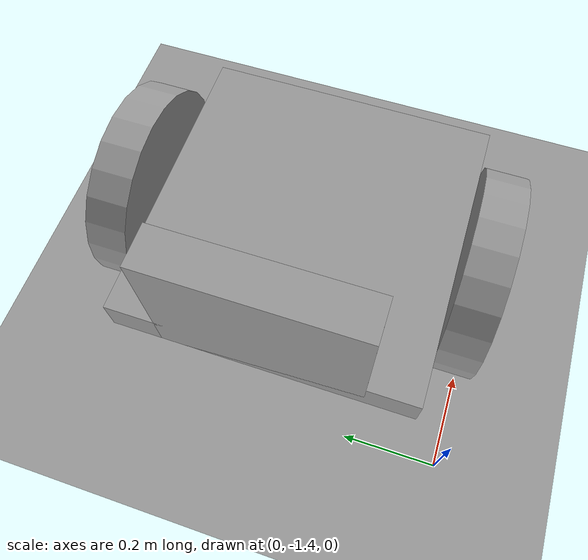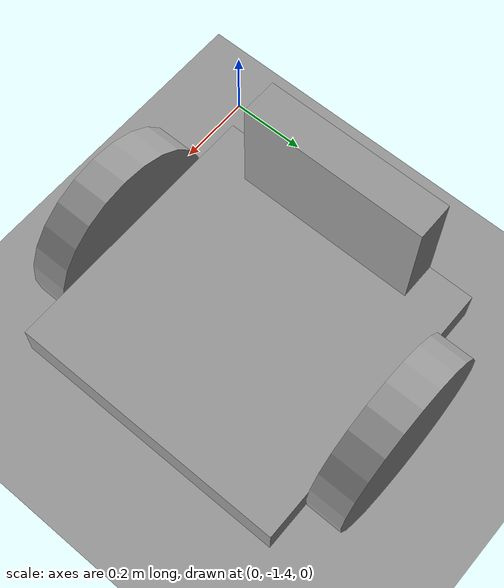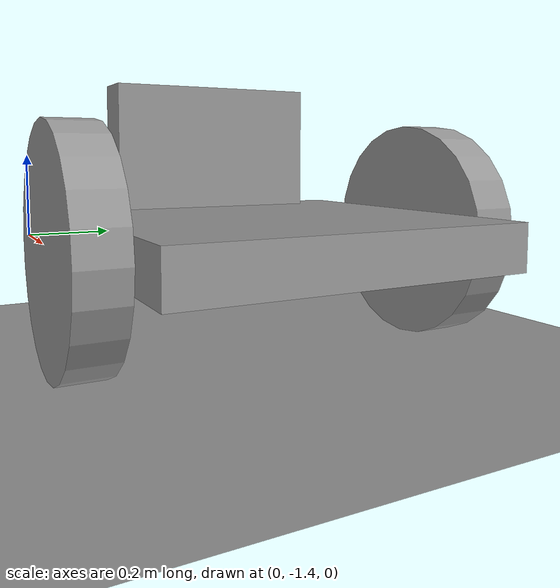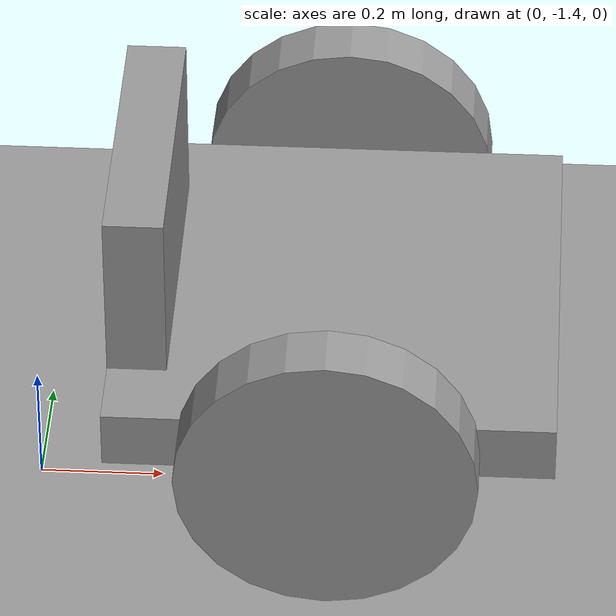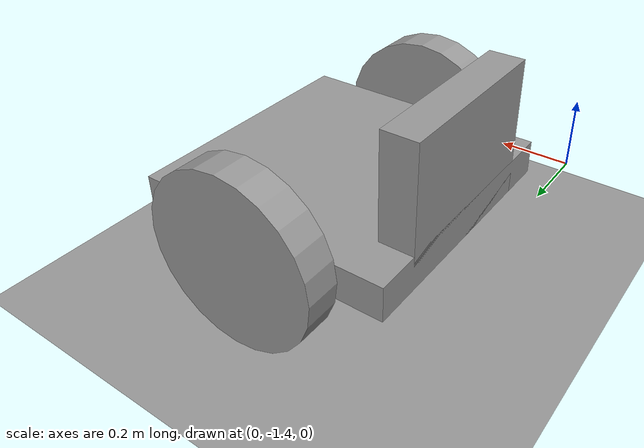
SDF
<?xml version='1.0'?>
<sdf version='1.6'>
  <model name='wheelchair'>
    <link name='link_1'>
      <inertial>
        <mass>1</mass>
        <inertia>
          <ixx>0.166667</ixx>
          <ixy>0</ixy>
          <ixz>0</ixz>
          <iyy>0.166667</iyy>
          <iyz>0</iyz>
          <izz>0.166667</izz>
        </inertia>
        <pose frame=''>0 0 0 0 -0 0</pose>
      </inertial>
      <pose frame=''>0.467386 -0.968428 0.02 0 -0 0</pose>
      <gravity>1</gravity>
      <self_collide>0</self_collide>
      <kinematic>0</kinematic>
      <enable_wind>0</enable_wind>
      <visual name='visual'>
        <pose frame=''>0 0 0 0 -0 0</pose>
        <geometry>
          <box>
            <size>0.75 0.75 0.1</size>
          </box>
        </geometry>
        <material>
          <lighting>1</lighting>
          <script>
            <uri>file://media/materials/scripts/gazebo.material</uri>
            <name>Gazebo/Grey</name>
          </script>
          <shader type='pixel'>
            <normal_map>__default__</normal_map>
          </shader>
          <ambient>0.3 0.3 0.3 1</ambient>
          <diffuse>0.7 0.7 0.7 1</diffuse>
          <specular>0.01 0.01 0.01 1</specular>
          <emissive>0 0 0 1</emissive>
        </material>
        <transparency>0</transparency>
        <cast_shadows>1</cast_shadows>
      </visual>
      <collision name='collision'>
        <laser_retro>0</laser_retro>
        <max_contacts>10</max_contacts>
        <pose frame=''>0 0 0 0 -0 0</pose>
        <geometry>
          <box>
            <size>0.75 0.75 0.1</size>
          </box>
        </geometry>
        <surface>
          <friction>
            <ode>
              <mu>1</mu>
              <mu2>1</mu2>
              <fdir1>0 0 0</fdir1>
              <slip1>0</slip1>
              <slip2>0</slip2>
            </ode>
            <torsional>
              <coefficient>1</coefficient>
              <patch_radius>0</patch_radius>
              <surface_radius>0</surface_radius>
              <use_patch_radius>1</use_patch_radius>
              <ode>
                <slip>0</slip>
              </ode>
            </torsional>
          </friction>
          <bounce>
            <restitution_coefficient>0</restitution_coefficient>
            <threshold>1e+06</threshold>
          </bounce>
          <contact>
            <collide_without_contact>0</collide_without_contact>
            <collide_without_contact_bitmask>1</collide_without_contact_bitmask>
            <collide_bitmask>1</collide_bitmask>
            <ode>
              <soft_cfm>0</soft_cfm>
              <soft_erp>0.2</soft_erp>
              <kp>1e+13</kp>
              <kd>1</kd>
              <max_vel>0.01</max_vel>
              <min_depth>0</min_depth>
            </ode>
            <bullet>
              <split_impulse>1</split_impulse>
              <split_impulse_penetration_threshold>-0.01</split_impulse_penetration_threshold>
              <soft_cfm>0</soft_cfm>
              <soft_erp>0.2</soft_erp>
              <kp>1e+13</kp>
              <kd>1</kd>
            </bullet>
          </contact>
        </surface>
      </collision>
    </link>
    <link name='link_2'>
      <inertial>
        <mass>1</mass>
        <inertia>
          <ixx>0.145833</ixx>
          <ixy>0</ixy>
          <ixz>0</ixz>
          <iyy>0.145833</iyy>
          <iyz>0</iyz>
          <izz>0.125</izz>
        </inertia>
        <pose frame=''>0 0 0 0 -0 0</pose>
      </inertial>
      <pose frame=''>0.467386 -0.543428 0.02 0 -0 0</pose>
      <gravity>1</gravity>
      <self_collide>0</self_collide>
      <kinematic>0</kinematic>
      <enable_wind>0</enable_wind>
      <visual name='visual'>
        <pose frame=''>0 0 0 1.5708 -0 0</pose>
        <geometry>
          <cylinder>
            <radius>0.25</radius>
            <length>0.1</length>
          </cylinder>
        </geometry>
        <material>
          <lighting>1</lighting>
          <script>
            <uri>file://media/materials/scripts/gazebo.material</uri>
            <name>Gazebo/Grey</name>
          </script>
          <shader type='pixel'>
            <normal_map>__default__</normal_map>
          </shader>
          <ambient>0.3 0.3 0.3 1</ambient>
          <diffuse>0.7 0.7 0.7 1</diffuse>
          <specular>0.01 0.01 0.01 1</specular>
          <emissive>0 0 0 1</emissive>
        </material>
        <transparency>0</transparency>
        <cast_shadows>1</cast_shadows>
      </visual>
      <collision name='collision'>
        <laser_retro>0</laser_retro>
        <max_contacts>10</max_contacts>
        <pose frame=''>0 0 0 1.5708 -0 0</pose>
        <geometry>
          <cylinder>
            <radius>0.25</radius>
            <length>0.1</length>
          </cylinder>
        </geometry>
        <surface>
          <friction>
            <ode>
              <mu>1</mu>
              <mu2>1</mu2>
              <fdir1>0 0 0</fdir1>
              <slip1>0</slip1>
              <slip2>0</slip2>
            </ode>
            <torsional>
              <coefficient>1</coefficient>
              <patch_radius>0</patch_radius>
              <surface_radius>0</surface_radius>
              <use_patch_radius>1</use_patch_radius>
              <ode>
                <slip>0</slip>
              </ode>
            </torsional>
          </friction>
          <bounce>
            <restitution_coefficient>0</restitution_coefficient>
            <threshold>1e+06</threshold>
          </bounce>
          <contact>
            <collide_without_contact>0</collide_without_contact>
            <collide_without_contact_bitmask>1</collide_without_contact_bitmask>
            <collide_bitmask>1</collide_bitmask>
            <ode>
              <soft_cfm>0</soft_cfm>
              <soft_erp>0.2</soft_erp>
              <kp>1e+13</kp>
              <kd>1</kd>
              <max_vel>0.01</max_vel>
              <min_depth>0</min_depth>
            </ode>
            <bullet>
              <split_impulse>1</split_impulse>
              <split_impulse_penetration_threshold>-0.01</split_impulse_penetration_threshold>
              <soft_cfm>0</soft_cfm>
              <soft_erp>0.2</soft_erp>
              <kp>1e+13</kp>
              <kd>1</kd>
            </bullet>
          </contact>
        </surface>
      </collision>
    </link>
    <link name='link_2_clone'>
      <inertial>
        <mass>1</mass>
        <inertia>
          <ixx>0.145833</ixx>
          <ixy>0</ixy>
          <ixz>0</ixz>
          <iyy>0.145833</iyy>
          <iyz>0</iyz>
          <izz>0.125</izz>
        </inertia>
        <pose frame=''>0 0 0 0 -0 0</pose>
      </inertial>
      <pose frame=''>0.467386 -1.39343 0.02 0 -0 0</pose>
      <gravity>1</gravity>
      <self_collide>0</self_collide>
      <kinematic>0</kinematic>
      <enable_wind>0</enable_wind>
      <visual name='visual'>
        <pose frame=''>0 0 0 1.5708 -0 0</pose>
        <geometry>
          <cylinder>
            <radius>0.25</radius>
            <length>0.1</length>
          </cylinder>
        </geometry>
        <material>
          <lighting>1</lighting>
          <script>
            <uri>file://media/materials/scripts/gazebo.material</uri>
            <name>Gazebo/Grey</name>
          </script>
          <shader type='pixel'>
            <normal_map>__default__</normal_map>
          </shader>
          <ambient>0.3 0.3 0.3 1</ambient>
          <diffuse>0.7 0.7 0.7 1</diffuse>
          <specular>0.01 0.01 0.01 1</specular>
          <emissive>0 0 0 1</emissive>
        </material>
        <transparency>0</transparency>
        <cast_shadows>1</cast_shadows>
      </visual>
      <collision name='collision'>
        <laser_retro>0</laser_retro>
        <max_contacts>10</max_contacts>
        <pose frame=''>0 0 0 1.5708 -0 0</pose>
        <geometry>
          <cylinder>
            <radius>0.25</radius>
            <length>0.1</length>
          </cylinder>
        </geometry>
        <surface>
          <friction>
            <ode>
              <mu>1</mu>
              <mu2>1</mu2>
              <fdir1>0 0 0</fdir1>
              <slip1>0</slip1>
              <slip2>0</slip2>
            </ode>
            <torsional>
              <coefficient>1</coefficient>
              <patch_radius>0</patch_radius>
              <surface_radius>0</surface_radius>
              <use_patch_radius>1</use_patch_radius>
              <ode>
                <slip>0</slip>
              </ode>
            </torsional>
          </friction>
          <bounce>
            <restitution_coefficient>0</restitution_coefficient>
            <threshold>1e+06</threshold>
          </bounce>
          <contact>
            <collide_without_contact>0</collide_without_contact>
            <collide_without_contact_bitmask>1</collide_without_contact_bitmask>
            <collide_bitmask>1</collide_bitmask>
            <ode>
              <soft_cfm>0</soft_cfm>
              <soft_erp>0.2</soft_erp>
              <kp>1e+13</kp>
              <kd>1</kd>
              <max_vel>0.01</max_vel>
              <min_depth>0</min_depth>
            </ode>
            <bullet>
              <split_impulse>1</split_impulse>
              <split_impulse_penetration_threshold>-0.01</split_impulse_penetration_threshold>
              <soft_cfm>0</soft_cfm>
              <soft_erp>0.2</soft_erp>
              <kp>1e+13</kp>
              <kd>1</kd>
            </bullet>
          </contact>
        </surface>
      </collision>
    </link>
    <link name='link_3'>
      <inertial>
        <mass>1</mass>
        <inertia>
          <ixx>0.166667</ixx>
          <ixy>0</ixy>
          <ixz>0</ixz>
          <iyy>0.166667</iyy>
          <iyz>0</iyz>
          <izz>0.166667</izz>
        </inertia>
        <pose frame=''>0 0 0 0 -0 0</pose>
      </inertial>
      <pose frame=''>0.142386 -0.968428 0.17 0 -0 0</pose>
      <gravity>1</gravity>
      <self_collide>0</self_collide>
      <kinematic>0</kinematic>
      <enable_wind>0</enable_wind>
      <visual name='visual'>
        <pose frame=''>0 0 0 0 -0 0</pose>
        <geometry>
          <box>
            <size>0.1 0.5 0.4</size>
          </box>
        </geometry>
        <material>
          <lighting>1</lighting>
          <script>
            <uri>file://media/materials/scripts/gazebo.material</uri>
            <name>Gazebo/Grey</name>
          </script>
          <shader type='pixel'>
            <normal_map>__default__</normal_map>
          </shader>
          <ambient>0.3 0.3 0.3 1</ambient>
          <diffuse>0.7 0.7 0.7 1</diffuse>
          <specular>0.01 0.01 0.01 1</specular>
          <emissive>0 0 0 1</emissive>
        </material>
        <transparency>0</transparency>
        <cast_shadows>1</cast_shadows>
      </visual>
      <collision name='collision'>
        <laser_retro>0</laser_retro>
        <max_contacts>10</max_contacts>
        <pose frame=''>0 0 0 0 -0 0</pose>
        <geometry>
          <box>
            <size>0.1 0.5 0.4</size>
          </box>
        </geometry>
        <surface>
          <friction>
            <ode>
              <mu>1</mu>
              <mu2>1</mu2>
              <fdir1>0 0 0</fdir1>
              <slip1>0</slip1>
              <slip2>0</slip2>
            </ode>
            <torsional>
              <coefficient>1</coefficient>
              <patch_radius>0</patch_radius>
              <surface_radius>0</surface_radius>
              <use_patch_radius>1</use_patch_radius>
              <ode>
                <slip>0</slip>
              </ode>
            </torsional>
          </friction>
          <bounce>
            <restitution_coefficient>0</restitution_coefficient>
            <threshold>1e+06</threshold>
          </bounce>
          <contact>
            <collide_without_contact>0</collide_without_contact>
            <collide_without_contact_bitmask>1</collide_without_contact_bitmask>
            <collide_bitmask>1</collide_bitmask>
            <ode>
              <soft_cfm>0</soft_cfm>
              <soft_erp>0.2</soft_erp>
              <kp>1e+13</kp>
              <kd>1</kd>
              <max_vel>0.01</max_vel>
              <min_depth>0</min_depth>
            </ode>
            <bullet>
              <split_impulse>1</split_impulse>
              <split_impulse_penetration_threshold>-0.01</split_impulse_penetration_threshold>
              <soft_cfm>0</soft_cfm>
              <soft_erp>0.2</soft_erp>
              <kp>1e+13</kp>
              <kd>1</kd>
            </bullet>
          </contact>
        </surface>
      </collision>
    </link>
    <model name='ground_plane'>
      <static>1</static>
      <link name='link'>
        <collision name='collision'>
          <geometry>
            <plane>
              <normal>0 0 1</normal>
              <size>100 100</size>
            </plane>
          </geometry>
          <surface>
            <friction>
              <ode>
                <mu>100</mu>
                <mu2>50</mu2>
              </ode>
            </friction>
          </surface>
        </collision>
        <visual name='visual'>
          <cast_shadows>0</cast_shadows>
          <geometry>
            <plane>
              <normal>0 0 1</normal>
              <size>100 100</size>
            </plane>
          </geometry>
          <material>
            <script>
              <uri>file://media/materials/scripts/gazebo.material</uri>
              <name>Gazebo/Grey</name>
            </script>
          </material>
        </visual>
      </link>
      <pose frame=''>-1.54454 3.87371 -0.23 0 -0 0</pose>
    </model>
    <joint name='link_1_JOINT_0' type='revolute'>
      <parent>link_1</parent>
      <child>link_2</child>
      <pose frame=''>0 0 0 0 -0 0</pose>
      <axis>
        <xyz>1 0 0</xyz>
        <use_parent_model_frame>0</use_parent_model_frame>
        <limit>
          <lower>-1.79769e+308</lower>
          <upper>1.79769e+308</upper>
          <effort>-1</effort>
          <velocity>-1</velocity>
        </limit>
        <dynamics>
          <spring_reference>0</spring_reference>
          <spring_stiffness>0</spring_stiffness>
          <damping>0</damping>
        </dynamics>
      </axis>
      <physics>
        <ode>
          <limit>
            <cfm>0</cfm>
            <erp>0.2</erp>
          </limit>
          <suspension>
            <cfm>0</cfm>
            <erp>0.2</erp>
          </suspension>
        </ode>
      </physics>
    </joint>
    <joint name='link_1_JOINT_1' type='revolute'>
      <parent>link_1</parent>
      <child>link_2_clone</child>
      <pose frame=''>0 0 0 0 -0 0</pose>
      <axis>
        <xyz>1 0 0</xyz>
        <use_parent_model_frame>0</use_parent_model_frame>
        <limit>
          <lower>-1.79769e+308</lower>
          <upper>1.79769e+308</upper>
          <effort>-1</effort>
          <velocity>-1</velocity>
        </limit>
        <dynamics>
          <spring_reference>0</spring_reference>
          <spring_stiffness>0</spring_stiffness>
          <damping>0</damping>
        </dynamics>
      </axis>
      <physics>
        <ode>
          <limit>
            <cfm>0</cfm>
            <erp>0.2</erp>
          </limit>
          <suspension>
            <cfm>0</cfm>
            <erp>0.2</erp>
          </suspension>
        </ode>
      </physics>
    </joint>
    <joint name='link_1_JOINT_2' type='fixed'>
      <parent>link_1</parent>
      <child>link_3</child>
      <pose frame=''>0 0 0 0 -0 0</pose>
      <physics>
        <ode>
          <limit>
            <cfm>0</cfm>
            <erp>0.2</erp>
          </limit>
          <suspension>
            <cfm>0</cfm>
            <erp>0.2</erp>
          </suspension>
        </ode>
      </physics>
    </joint>
    <static>0</static>
    <allow_auto_disable>1</allow_auto_disable>
  </model>
</sdf>
